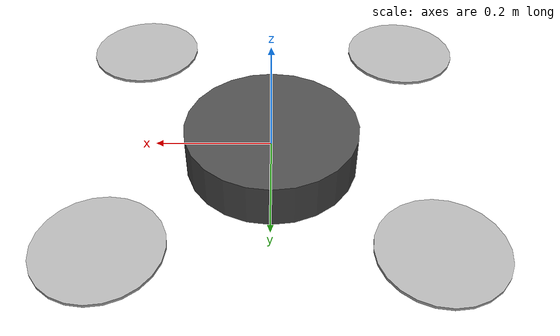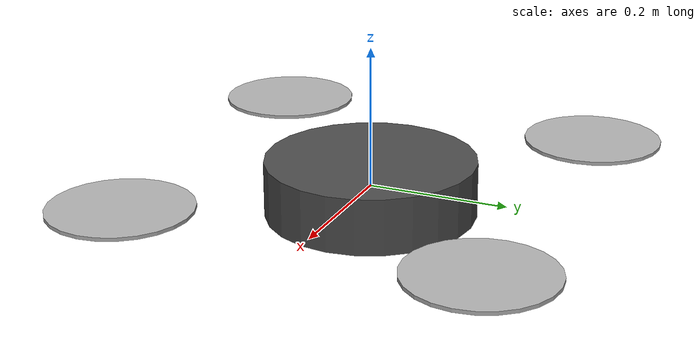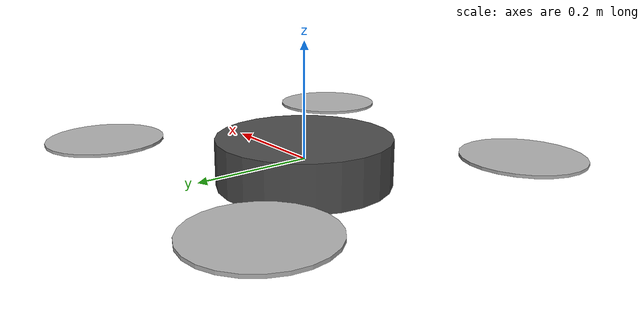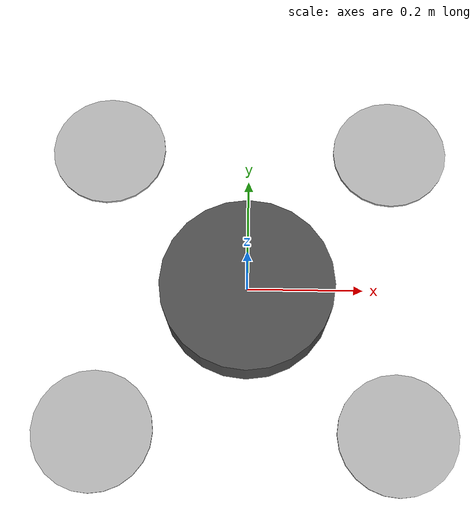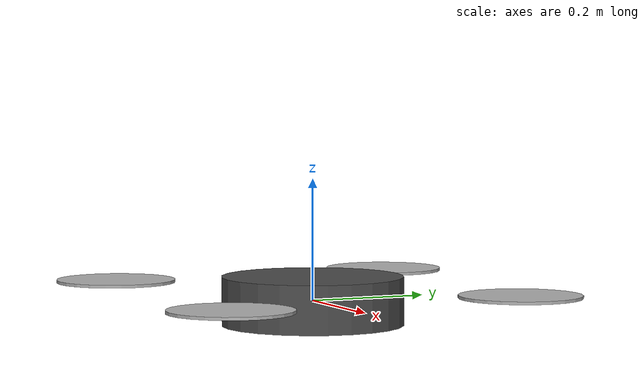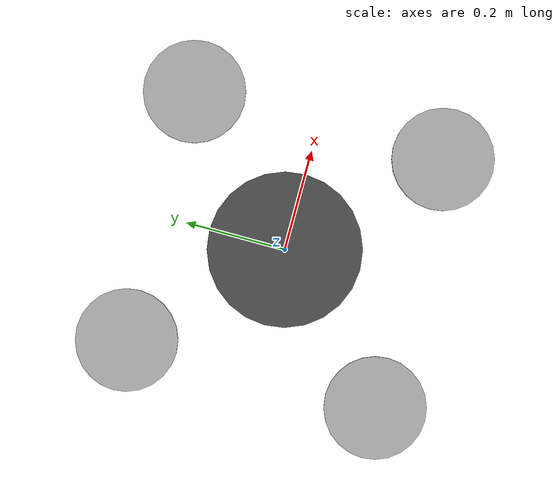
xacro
<?xml version="1.0"?>
<robot name="quadrotor" xmlns:xacro="http://www.ros.org/wiki/xacro">

  <xacro:property name="body_mass" value="1.5"/>
  <xacro:property name="body_radius" value="0.15"/>
  <xacro:property name="body_length" value="0.08"/>
  <xacro:property name="arm_length" value="0.25"/>
  <xacro:property name="rotor_mass" value="0.05"/>
  <xacro:property name="rotor_radius" value="0.1"/>

  <link name="base_link">
    <inertial>
      <mass value="${body_mass}"/>
      <origin xyz="0 0 0" rpy="0 0 0"/>
      <inertia ixx="0.0347563" ixy="0" ixz="0"
               iyy="0.0347563" iyz="0" izz="0.0977"/>
    </inertial>
    <visual>
      <origin xyz="0 0 0" rpy="0 0 0"/>
      <geometry>
        <cylinder radius="${body_radius}" length="${body_length}"/>
      </geometry>
      <material name="dark_grey">
        <color rgba="0.3 0.3 0.3 1"/>
      </material>
    </visual>
    <collision>
      <origin xyz="0 0 0" rpy="0 0 0"/>
      <geometry>
        <cylinder radius="${body_radius}" length="${body_length}"/>
      </geometry>
    </collision>
  </link>

  <xacro:macro name="rotor" params="name x y z direction">
    <link name="${name}">
      <inertial>
        <mass value="${rotor_mass}"/>
        <origin xyz="0 0 0" rpy="0 0 0"/>
        <inertia ixx="0.0001" ixy="0" ixz="0"
                 iyy="0.0001" iyz="0" izz="0.0002"/>
      </inertial>
      <visual>
        <origin xyz="0 0 0" rpy="0 0 0"/>
        <geometry>
          <cylinder radius="${rotor_radius}" length="0.005"/>
        </geometry>
        <material name="light_grey">
          <color rgba="0.7 0.7 0.7 1"/>
        </material>
      </visual>
      <collision>
        <origin xyz="0 0 0" rpy="0 0 0"/>
        <geometry>
          <cylinder radius="${rotor_radius}" length="0.005"/>
        </geometry>
      </collision>
    </link>
    <joint name="${name}_joint" type="fixed">
      <parent link="base_link"/>
      <child link="${name}"/>
      <origin xyz="${x} ${y} ${z}" rpy="0 0 0"/>
    </joint>
  </xacro:macro>

  <xacro:rotor name="rotor_0" x="${arm_length}"  y="${arm_length}"  z="0.02" direction="ccw"/>
  <xacro:rotor name="rotor_1" x="${arm_length}"  y="-${arm_length}" z="0.02" direction="cw"/>
  <xacro:rotor name="rotor_2" x="-${arm_length}" y="-${arm_length}" z="0.02" direction="ccw"/>
  <xacro:rotor name="rotor_3" x="-${arm_length}" y="${arm_length}"  z="0.02" direction="cw"/>

  <link name="imu_link">
    <inertial>
      <mass value="0.01"/>
      <inertia ixx="0.00001" ixy="0" ixz="0"
               iyy="0.00001" iyz="0" izz="0.00001"/>
    </inertial>
  </link>

  <joint name="imu_joint" type="fixed">
    <parent link="base_link"/>
    <child link="imu_link"/>
    <origin xyz="0 0 0" rpy="0 0 0"/>
  </joint>

  <gazebo>
    <plugin filename="gz-sim-multicopter-motor-model-system"
            name="gz::sim::systems::MulticopterMotorModel">
      <robotNamespace>quadrotor</robotNamespace>
      <jointName>rotor_0_joint</jointName>
      <linkName>rotor_0</linkName>
      <turningDirection>ccw</turningDirection>
      <timeConstantUp>0.0125</timeConstantUp>
      <timeConstantDown>0.025</timeConstantDown>
      <maxRotVelocity>800.0</maxRotVelocity>
      <motorConstant>8.54858e-06</motorConstant>
      <momentConstant>0.016</momentConstant>
      <commandSubTopic>command/motor_speed</commandSubTopic>
      <motorNumber>0</motorNumber>
      <rotorDragCoefficient>8.06428e-05</rotorDragCoefficient>
      <rollingMomentCoefficient>1e-06</rollingMomentCoefficient>
      <motorSpeedPubTopic>motor_speed/0</motorSpeedPubTopic>
      <rotorVelocitySlowdownSim>10</rotorVelocitySlowdownSim>
    </plugin>
    <plugin filename="gz-sim-multicopter-motor-model-system"
            name="gz::sim::systems::MulticopterMotorModel">
      <robotNamespace>quadrotor</robotNamespace>
      <jointName>rotor_1_joint</jointName>
      <linkName>rotor_1</linkName>
      <turningDirection>cw</turningDirection>
      <timeConstantUp>0.0125</timeConstantUp>
      <timeConstantDown>0.025</timeConstantDown>
      <maxRotVelocity>800.0</maxRotVelocity>
      <motorConstant>8.54858e-06</motorConstant>
      <momentConstant>0.016</momentConstant>
      <commandSubTopic>command/motor_speed</commandSubTopic>
      <motorNumber>1</motorNumber>
      <rotorDragCoefficient>8.06428e-05</rotorDragCoefficient>
      <rollingMomentCoefficient>1e-06</rollingMomentCoefficient>
      <motorSpeedPubTopic>motor_speed/1</motorSpeedPubTopic>
      <rotorVelocitySlowdownSim>10</rotorVelocitySlowdownSim>
    </plugin>
    <plugin filename="gz-sim-multicopter-motor-model-system"
            name="gz::sim::systems::MulticopterMotorModel">
      <robotNamespace>quadrotor</robotNamespace>
      <jointName>rotor_2_joint</jointName>
      <linkName>rotor_2</linkName>
      <turningDirection>ccw</turningDirection>
      <timeConstantUp>0.0125</timeConstantUp>
      <timeConstantDown>0.025</timeConstantDown>
      <maxRotVelocity>800.0</maxRotVelocity>
      <motorConstant>8.54858e-06</motorConstant>
      <momentConstant>0.016</momentConstant>
      <commandSubTopic>command/motor_speed</commandSubTopic>
      <motorNumber>2</motorNumber>
      <rotorDragCoefficient>8.06428e-05</rotorDragCoefficient>
      <rollingMomentCoefficient>1e-06</rollingMomentCoefficient>
      <motorSpeedPubTopic>motor_speed/2</motorSpeedPubTopic>
      <rotorVelocitySlowdownSim>10</rotorVelocitySlowdownSim>
    </plugin>
    <plugin filename="gz-sim-multicopter-motor-model-system"
            name="gz::sim::systems::MulticopterMotorModel">
      <robotNamespace>quadrotor</robotNamespace>
      <jointName>rotor_3_joint</jointName>
      <linkName>rotor_3</linkName>
      <turningDirection>cw</turningDirection>
      <timeConstantUp>0.0125</timeConstantUp>
      <timeConstantDown>0.025</timeConstantDown>
      <maxRotVelocity>800.0</maxRotVelocity>
      <motorConstant>8.54858e-06</motorConstant>
      <momentConstant>0.016</momentConstant>
      <commandSubTopic>command/motor_speed</commandSubTopic>
      <motorNumber>3</motorNumber>
      <rotorDragCoefficient>8.06428e-05</rotorDragCoefficient>
      <rollingMomentCoefficient>1e-06</rollingMomentCoefficient>
      <motorSpeedPubTopic>motor_speed/3</motorSpeedPubTopic>
      <rotorVelocitySlowdownSim>10</rotorVelocitySlowdownSim>
    </plugin>
    <plugin filename="gz-sim-multicopter-control-system"
            name="gz::sim::systems::MulticopterVelocityControl">
      <robotNamespace>quadrotor</robotNamespace>
      <commandSubTopic>cmd_vel</commandSubTopic>
      <enableSubTopic>enable</enableSubTopic>
      <velocityGain>2.7 2.7 2.7</velocityGain>
      <attitudeGain>2.0 2.0 2.0</attitudeGain>
      <angularRateGain>0.15 0.15 0.15</angularRateGain>
      <maximumLinearAcceleration>2 2 2</maximumLinearAcceleration>
      <robotBaseFrameId>base_link</robotBaseFrameId>
      <odometrySubTopic>odom</odometrySubTopic>
      <odometryPubTopic>odom</odometryPubTopic>
    </plugin>
    <plugin filename="gz-sim-imu-system"
            name="gz::sim::systems::Imu"/>
  </gazebo>

  <gazebo reference="imu_link">
    <sensor name="imu_sensor" type="imu">
      <always_on>true</always_on>
      <update_rate>100</update_rate>
      <topic>imu</topic>
    </sensor>
  </gazebo>

</robot>
